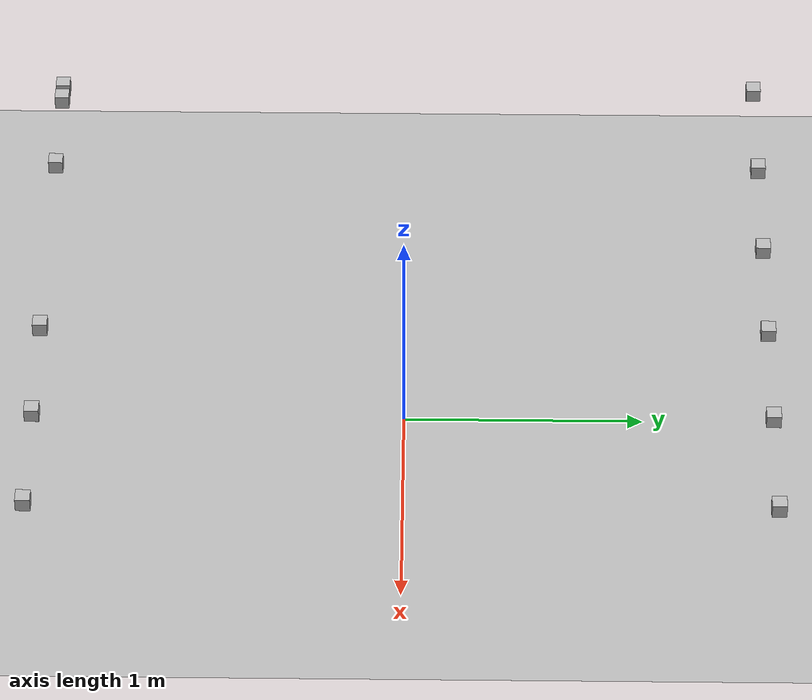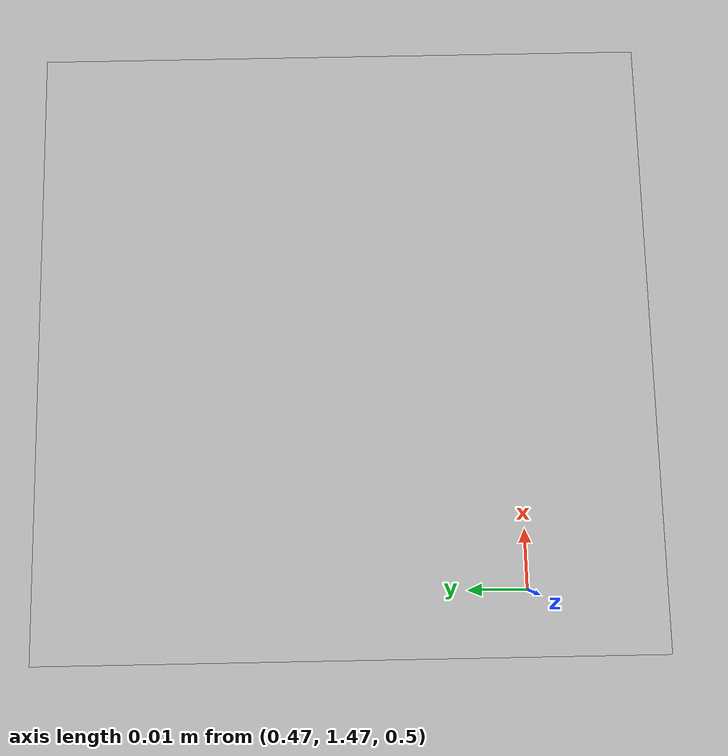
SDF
<sdf version="1.4">
 <world name="aisle">
  <physics name="1ms" type="ignored">
   <max_step_size>0.001</max_step_size>
   <real_time_factor>1.0</real_time_factor>
  </physics>
  <plugin filename="ignition-gazebo-physics-system" name="gz::sim::systems::Physics"/>
  <plugin filename="ignition-gazebo-user-commands-system" name="gz::sim::systems::UserCommands"/>
  <plugin filename="ignition-gazebo-scene-broadcaster-system" name="gz::sim::systems::SceneBroadcaster"/>
  <plugin filename="ignition-gazebo-sensors-system" name="gz::sim::systems::Sensors">
   <render_engine>ogre2</render_engine>
  </plugin>
  <scene><ambient>0.65 0.65 0.65 1</ambient><background>0.78 0.82 0.88 1</background></scene>
  <light type="directional" name="sun">
   <pose>0 0 10 0 0 0</pose>
   <diffuse>1.0 1.0 1.0 1</diffuse>
   <specular>0.35 0.35 0.35 1</specular>
   <attenuation>
    <range>1000</range>
    <constant>0.9</constant>
    <linear>0.01</linear>
    <quadratic>0.001</quadratic>
   </attenuation>
   <direction>-0.45 0.2 -0.87</direction>
  </light>
  <model name="ground_plane">
   <static>true</static>
   <link name="link">
    <collision name="collision">
     <geometry><plane><normal>0 0 1</normal><size>100 100</size></plane></geometry>
    </collision>
    <visual name="visual">
     <cast_shadows>false</cast_shadows>
     <geometry><plane><normal>0 0 1</normal><size>100 100</size></plane></geometry>
     <material>
      <ambient>0.72 0.72 0.72 1</ambient>
      <diffuse>0.72 0.72 0.72 1</diffuse>
      <specular>0.08 0.08 0.08 1</specular>
     </material>
    </visual>
   </link>
  </model>
  <include><name>obj_ball</name><pose>-1.5 -1.5 0.535 0 0 0</pose><uri>model://product_0</uri></include>
  <include><name>obj_book</name><pose>-1.0 -1.5 0.535 0 0 0</pose><uri>model://product_0</uri></include>
  <include><name>obj_charger</name><pose>1.0 1.5 0.535 0 0 0</pose><uri>model://product_0</uri></include>
  <include><name>obj_coat</name><pose>0.0 1.5 0.535 0 0 0</pose><uri>model://product_0</uri></include>
  <include><name>obj_cup</name><pose>1.0 -1.5 0.535 0 0 0</pose><uri>model://product_0</uri></include>
  <include><name>obj_glue</name><pose>-1.42 -1.5 0.535 0 0 0</pose><uri>model://product_0</uri></include>
  <include><name>obj_mouse</name><pose>0.5 1.5 0.535 0 0 0</pose><uri>model://product_0</uri></include>
  <include><name>obj_parcel</name><pose>-1.5 1.5 0.535 0 0 0</pose><uri>model://product_0</uri></include>
  <include><name>obj_pencil</name><pose>-0.5 1.5 0.535 0 0 0</pose><uri>model://product_0</uri></include>
  <include><name>obj_scissors</name><pose>-1.0 1.5 0.535 0 0 0</pose><uri>model://product_0</uri></include>
  <include><name>obj_snack</name><pose>0.5 -1.5 0.535 0 0 0</pose><uri>model://product_0</uri></include>
  <include><name>obj_tissue</name><pose>0.0 -1.5 0.535 0 0 0</pose><uri>model://product_0</uri></include>
 </world>
</sdf>

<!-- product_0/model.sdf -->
<sdf version='1.4'>
    <model name='box'>
        <static>true</static>
        <link name='link'>
            <collision name="collision_product">
                <geometry><box><size>0.06 0.06 0.06</size></box></geometry>
            </collision>
            <visual name="visual_product">
                <geometry><box><size>0.06 0.06 0.06</size></box></geometry>
            </visual>
        </link>
    </model>
</sdf>
